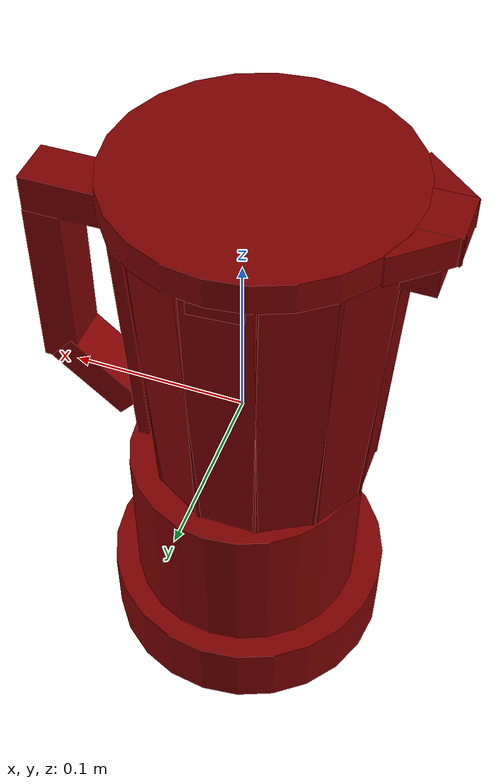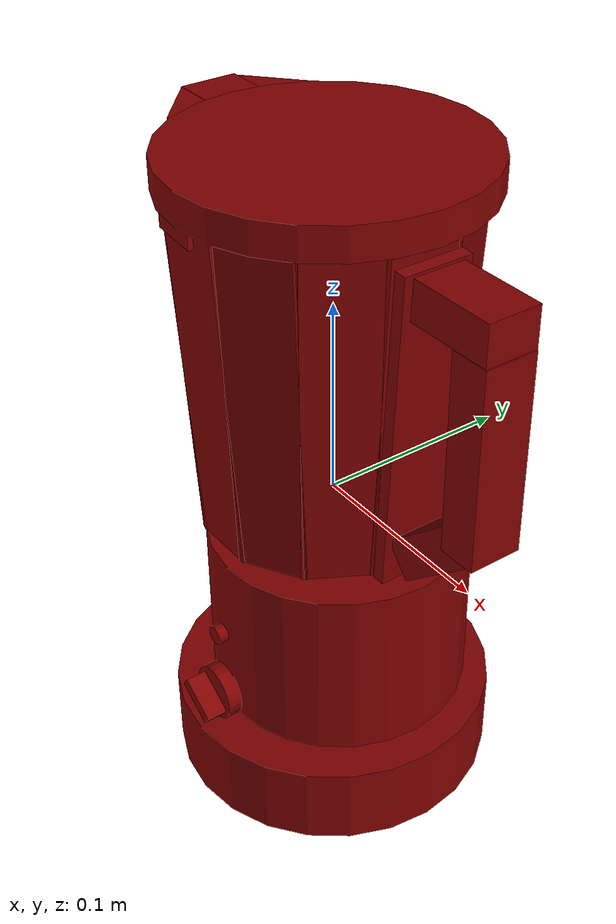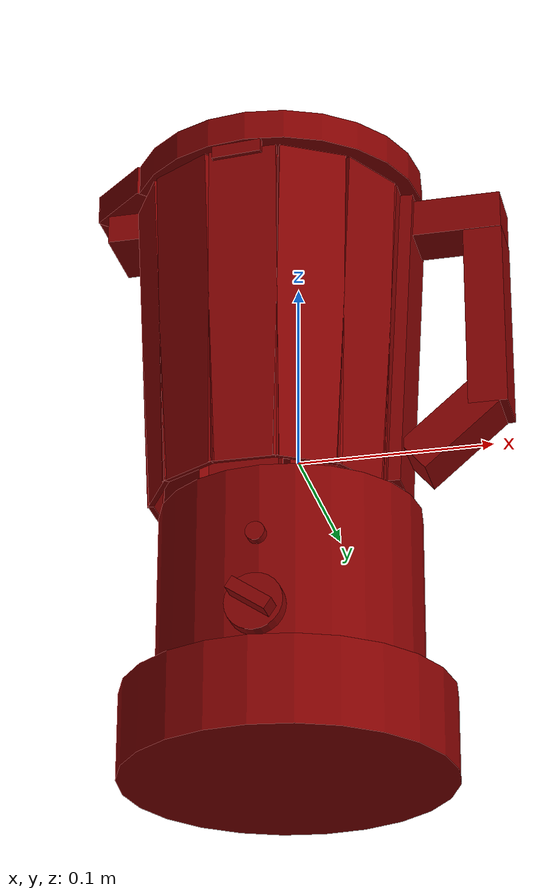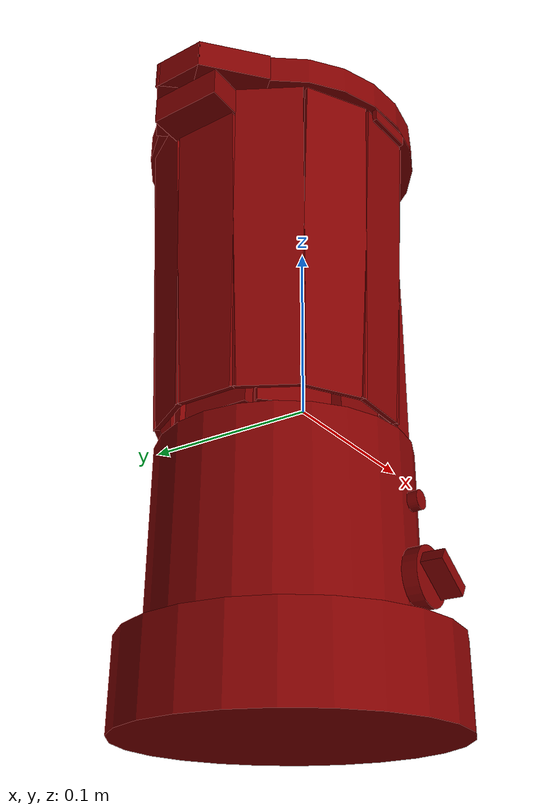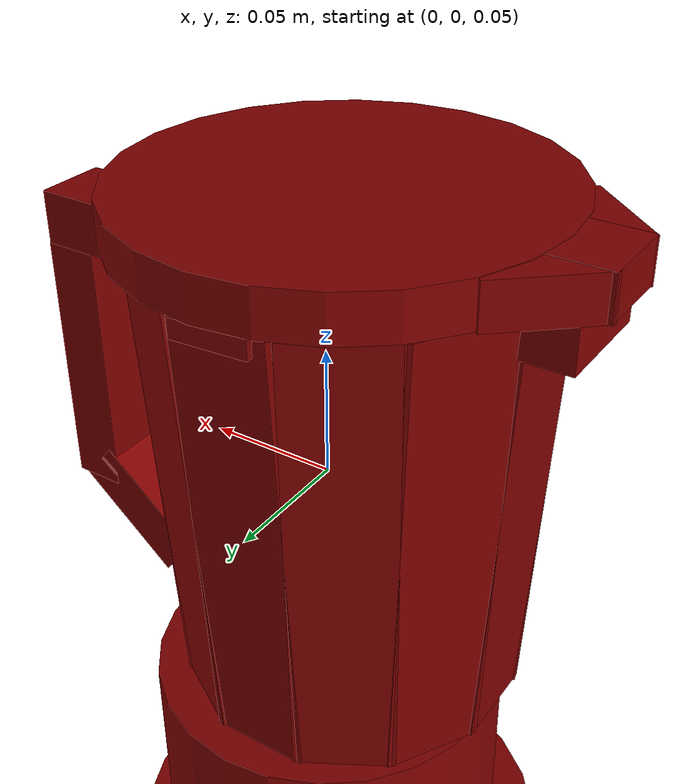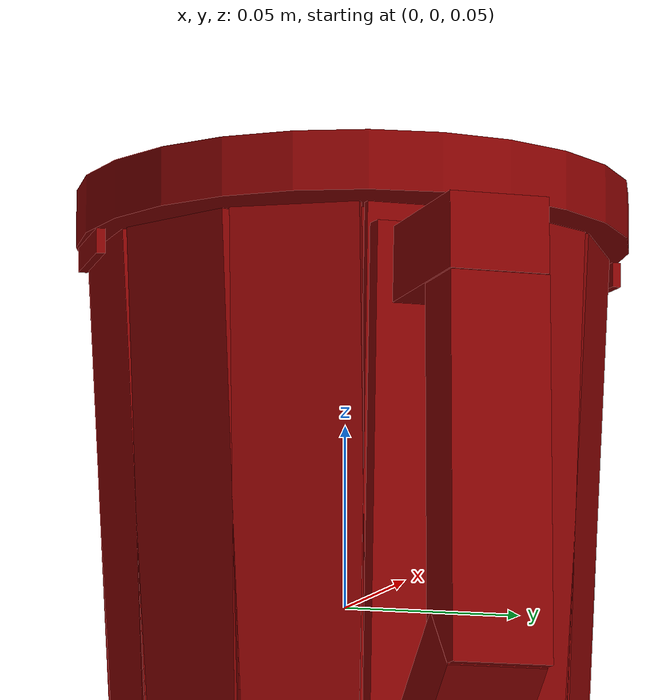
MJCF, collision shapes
<?xml version='1.0' encoding='UTF-8'?>
<mujoco model="model">
  <option timestep="0.002" gravity="0.0 0.0 -9.81"/>
  <compiler angle="radian"/>
  <asset>
    <mesh file="visuals/Blade001.obj" name="Blade001_vis"/>
    <mesh file="visuals/Body001.obj" name="Body001_vis"/>
    <mesh file="visuals/Button001.obj" name="Button001_vis"/>
    <mesh file="visuals/Handle001.obj" name="Handle001_vis"/>
    <mesh file="visuals/Jug001_Clear.obj" name="Jug001_Clear_vis"/>
    <mesh file="visuals/Knob001.obj" name="Knob001_vis"/>
    <mesh file="visuals/Lid001.obj" name="Lid001_vis"/>
    <texture file="visuals/T_BC001.png" name="Body001_material" type="2d"/>
    <material name="Body001_material" rgba="1 1 1 1.0" texture="Body001_material" shininess="0.4472135901451111" specular="0.3103448502657381"/>
    <texture file="visuals/T_BC001.png" name="Button001_material" type="2d"/>
    <material name="Button001_material" rgba="1 1 1 1.0" texture="Button001_material" shininess="0.4472135901451111" specular="0.3103448502657381"/>
    <texture file="visuals/T_BC001.png" name="Handle001_material" type="2d"/>
    <material name="Handle001_material" rgba="1 1 1 1.0" texture="Handle001_material" shininess="0.4472135901451111" specular="0.3103448502657381"/>
    <texture file="visuals/T_BC001.png" name="Blade001_material" type="2d"/>
    <material name="Blade001_material" rgba="1 1 1 1.0" texture="Blade001_material" shininess="0.4472135901451111" specular="0.3103448502657381"/>
    <texture file="visuals/T_BC001.png" name="Jug001_Clear_material" type="2d"/>
    <material name="Jug001_Clear_material" rgba="1 1 1 0.800000011920929" texture="Jug001_Clear_material" shininess="0.4472135901451111" specular="0.3103448502657381"/>
    <texture file="visuals/T_BC001.png" name="Lid001_material" type="2d"/>
    <material name="Lid001_material" rgba="1 1 1 1.0" texture="Lid001_material" shininess="0.4472135901451111" specular="0.3103448502657381"/>
    <texture file="visuals/T_BC001.png" name="Knob001_material" type="2d"/>
    <material name="Knob001_material" rgba="1 1 1 1.0" texture="Knob001_material" shininess="0.4472135901451111" specular="0.3103448502657381"/>
  </asset>
  <default>
    <default class="visual">
      <geom conaffinity="0" contype="0" group="1" type="mesh"/>
    </default>
    <default class="collision">
      <geom group="0" rgba="0.5 0 0 0.5"/>
    </default>
    <default class="spawn">
      <geom group="0" rgba="1 1 1 0.5" contype="0" conaffinity="0"/>
      <site group="0" rgba="1 1 1 0.5"/>
    </default>
    <default class="region">
      <geom group="1" conaffinity="0" contype="0" rgba="0 1 0 0"/>
    </default>
  </default>
  <worldbody>
    <body>
      <body name="object">
        <geom mesh="Body001_vis" type="mesh" solimp="0.998 0.998 0.001" solref="0.001 1" friction="0.95 0.3 0.1" class="visual" material="Body001_material"/>
        <geom class="collision" type="cylinder" pos="-0.005895 0.003938 -0.146067" size="0.08354654908180237 0.02203417755663395" quat="1.0 0.0 0.0 0.0" density="100"/>
        <geom class="collision" type="cylinder" pos="-0.005895 0.008325 -0.075028" size="0.06711135804653168 0.04750218614935875" quat="1.0 0.0 0.0 0.0" density="100"/>
        <geom class="collision" type="box" pos="-0.064896 0.006099 -0.007277" size="0.0030985779594630003 0.017711566761136055 0.017908580601215363" quat="1.0 0.0 0.0 0.0" density="100"/>
        <geom class="collision" type="box" pos="0.029324 0.006099 -0.007277" size="0.0030985779594630003 0.017711566761136055 0.017908567562699318" quat="1.0 0.0 0.0 0.0" density="100"/>
        <geom class="collision" type="box" pos="-0.017786 -0.041011 -0.007277" size="0.017711568623781204 0.0030985793564468622 0.017908554524183273" quat="1.0 0.0 0.0 0.0" density="100"/>
        <geom class="collision" type="box" pos="-0.017786 0.053210 -0.007277" size="0.017711568623781204 0.0030985793564468622 0.01790854148566723" quat="1.0 0.0 0.0 0.0" density="100"/>
        <geom class="collision" type="box" pos="0.015526 0.039411 -0.007277" size="0.0030985777266323566 0.017711566761136055 0.01790849305689335" quat="0.38268354535102844 0.0 -0.0 -0.9238795042037964" density="100"/>
        <geom class="collision" type="box" pos="-0.051098 -0.027212 -0.007277" size="0.0030985777266323566 0.017711566761136055 0.01790849305689335" quat="0.38268354535102844 0.0 -0.0 -0.9238795042037964" density="100"/>
        <geom class="collision" type="box" pos="0.015526 -0.027212 -0.007277" size="0.0030985779594630003 0.017711566761136055 0.01790849305689335" quat="0.9238795042037964 0.0 -0.0 -0.3826834559440613" density="100"/>
        <geom class="collision" type="box" pos="-0.051098 0.039411 -0.007277" size="0.0030985779594630003 0.017711566761136055 0.01790849305689335" quat="0.9238795042037964 0.0 -0.0 -0.3826834559440613" density="100"/>
        <body name="Button001">
          <joint axis="0.0 1.0 0.0" pos="-0.005903 -0.065722 -0.066494" limited="true" name="Button001_joint" range="0.0 0.003" type="slide" damping="1" frictionloss="1" armature=".01" stiffness="0.05"/>
          <geom mesh="Button001_vis" type="mesh" solimp="0.998 0.998 0.001" solref="0.001 1" friction="0.95 0.3 0.1" class="visual" material="Button001_material"/>
          <geom class="collision" type="cylinder" pos="-0.005895 -0.065677 -0.066531" size="0.00479704886674881 0.0025645531713962555" quat="0.7071068286895752 0.7071067690849304 0.0 0.0" density="100"/>
        </body>
        <body name="Handle001">
          <joint axis="0.0 0.0 1.0" pos="0.073328 0.006403 0.065737" limited="true" name="Handle001_joint" range="0.0 0.2" type="slide" damping="1" frictionloss="1" armature=".01" stiffness="0.05"/>
          <geom mesh="Handle001_vis" type="mesh" solimp="0.998 0.998 0.001" solref="0.001 1" friction="0.95 0.3 0.1" class="visual" material="Handle001_material"/>
          <geom class="collision" type="box" pos="0.084186 0.006303 0.132024" size="0.024435071274638176 0.013484399765729904 0.010110474191606045" quat="1.0 0.0 0.0 0.0" density="100"/>
          <geom class="collision" type="box" pos="0.098803 0.006303 0.071209" size="0.010110338218510151 0.013484399765729904 0.05041544884443283" quat="1.0 0.0 0.0 0.0" density="100"/>
          <geom class="collision" type="box" pos="0.078942 0.006303 0.011634" size="0.02543528564274311 0.013484399765729904 0.010110336355865002" quat="0.9384012818336487 0.0 -0.3455474078655243 0.0" density="100"/>
          <geom class="collision" type="box" pos="0.055656 0.006099 0.061901" size="0.003270904766395688 0.017711566761136055 0.08210444450378418" quat="0.9996132850646973 0.0 0.027808556333184242 0.0" density="100"/>
          <body name="Blade001">
            <joint axis="0.0 0.0 1.0" pos="-0.017639 0.006403 0.062518" limited="false" name="Blade001_joint" range="0 360" type="hinge" damping="1" frictionloss="1" armature=".01" stiffness="0.05" springref="-0.00"/>
            <geom mesh="Blade001_vis" type="mesh" solimp="0.998 0.998 0.001" solref="0.001 1" friction="0.95 0.3 0.1" class="visual" material="Blade001_material"/>
            <geom class="collision" type="cylinder" pos="-0.017597 0.006518 -0.008053" size="0.0280256737023592 0.018888885155320168" quat="1.0 0.0 0.0 0.0" density="100"/>
            <geom class="collision" type="cylinder" pos="-0.017597 0.006518 0.038419" size="0.02053365297615528 0.027440669015049934" quat="1.0 0.0 0.0 0.0" density="100"/>
            <geom class="collision" type="cylinder" pos="-0.017597 0.006518 0.109715" size="0.010141669772565365 0.042216382920742035" quat="1.0 0.0 0.0 0.0" density="100"/>
            <geom class="collision" type="box" pos="-0.042184 -0.010183 0.022065" size="0.006671010982245207 0.025818057358264923 0.0009999943431466818" quat="1.0 0.0 0.0 0.0" density="100"/>
            <geom class="collision" type="box" pos="0.006683 0.023000 0.032216" size="0.006671010982245207 0.025818057358264923 0.000999994808807969" quat="1.0 0.0 0.0 0.0" density="100"/>
            <geom class="collision" type="box" pos="-0.001538 -0.018419 0.061324" size="0.025818057358264923 0.006671012844890356 0.0009999953908845782" quat="1.0 0.0 0.0 0.0" density="100"/>
            <geom class="collision" type="box" pos="-0.034721 0.030448 0.051173" size="0.025818057358264923 0.006671012844890356 0.0009999959729611874" quat="1.0 0.0 0.0 0.0" density="100"/>
          </body>
          <body name="Jug001_Clear">
            <geom class="region" name="reg_int" type="box" pos="-0.017983 0.006708000000000002 0.0851375" size="0.054757 0.054829 0.06708549999999999"/>
            <geom mesh="Jug001_Clear_vis" type="mesh" solimp="0.998 0.998 0.001" solref="0.001 1" friction="0.95 0.3 0.1" class="visual" material="Jug001_Clear_material"/>
            <geom class="collision" type="box" pos="0.048994 0.006099 0.064795" size="0.0014110434567555785 0.017711566761136055 0.08591540902853012" quat="0.9996132850646973 0.0 0.027808556333184242 0.0" density="100"/>
            <geom class="collision" type="box" pos="-0.079438 0.006099 0.064795" size="0.0014110434567555785 0.017711566761136055 0.08591540902853012" quat="0.9996132850646973 0.0 -0.027808567509055138 0.0" density="100"/>
            <geom class="collision" type="box" pos="-0.015222 0.070316 0.064795" size="0.0014110434567555785 0.017711566761136055 0.08591540902853012" quat="0.7068333625793457 -0.019663644954562187 -0.019663646817207336 -0.7068333029747009" density="100"/>
            <geom class="collision" type="box" pos="-0.015222 -0.058117 0.064795" size="0.0014110434567555785 0.017711566761136055 0.08591540902853012" quat="0.7068333625793457 0.01966363750398159 0.01966363750398159 -0.7068333029747009" density="100"/>
            <geom class="collision" type="box" pos="-0.047330 -0.049513 0.064795" size="0.0014110434567555785 0.017711566761136055 0.08591540902853012" quat="0.49980661273002625 0.024082934483885765 0.013904287479817867 -0.8656904697418213" density="100"/>
            <geom class="collision" type="box" pos="0.016886 0.061712 0.064795" size="0.0014110434567555785 0.017711566761136055 0.08591540902853012" quat="0.49980661273002625 -0.02408294379711151 -0.013904293067753315 -0.8656904697418213" density="100"/>
            <geom class="collision" type="box" pos="0.040391 0.038208 0.064795" size="0.0014110434567555785 0.017711566761136055 0.08591540902853012" quat="0.25871896743774414 -0.026861032471060753 -0.007197392173111439 -0.9655522704124451" density="100"/>
            <geom class="collision" type="box" pos="-0.070835 -0.026009 0.064795" size="0.0014110434567555785 0.017711566761136055 0.08591540902853012" quat="0.25871896743774414 0.026861021295189857 0.007197389379143715 -0.9655522704124451" density="100"/>
            <geom class="collision" type="box" pos="-0.070835 0.038208 0.064795" size="0.0014110434567555785 0.017711566761136055 0.08591540157794952" quat="0.25871920585632324 -0.02686098776757717 0.007197387516498566 0.9655522108078003" density="100"/>
            <geom class="collision" type="box" pos="0.040391 -0.026009 0.064795" size="0.0014110434567555785 0.017711566761136055 0.08591540902853012" quat="0.25871920585632324 0.026861025020480156 -0.007197396829724312 0.9655522108078003" density="100"/>
            <geom class="collision" type="box" pos="0.016886 -0.049513 0.064795" size="0.0014110434567555785 0.017711566761136055 0.08591540902853012" quat="0.4998069107532501 0.024082954972982407 -0.013904305174946785 0.865690290927887" density="100"/>
            <geom class="collision" type="box" pos="-0.047330 0.061712 0.064795" size="0.0014110434567555785 0.017711566761136055 0.08591540902853012" quat="0.4998069107532501 -0.02408294379711151 0.013904298655688763 0.865690290927887" density="100"/>
            <geom class="collision" type="box" pos="-0.089107 0.006931 0.143926" size="0.012614632025361061 0.019579734653234482 0.007855560630559921" quat="1.0 0.0 0.0 0.0" density="100"/>
          </body>
          <body name="Lid001">
            <joint axis="0.0 0.0 1.0" pos="-0.022429 0.006403 0.145187" limited="true" name="Lid001_joint" range="0.0 0.1" type="slide" damping="1" frictionloss="1" armature=".01" stiffness="0.05"/>
            <geom mesh="Lid001_vis" type="mesh" solimp="0.998 0.998 0.001" solref="0.001 1" friction="0.95 0.3 0.1" class="visual" material="Lid001_material"/>
            <geom class="collision" type="cylinder" pos="-0.012361 0.006411 0.160223" size="0.07686559855937958 0.00810125283896923" quat="1.0 0.0 0.0 0.0" density="100"/>
            <geom class="collision" type="box" pos="-0.096101 0.006931 0.160190" size="0.012614632025361061 0.014571985229849815 0.008048349991440773" quat="1.0 0.0 0.0 0.0" density="100"/>
            <geom class="collision" type="box" pos="-0.017786 -0.051615 0.136672" size="0.012062350288033485 0.003668747842311859 0.015116958878934383" quat="1.0 0.0 0.0 0.0" density="100"/>
            <geom class="collision" type="box" pos="-0.017786 0.064500 0.136672" size="0.012062354944646358 0.003668749239295721 0.015116964466869831" quat="1.0 0.0 0.0 0.0" density="100"/>
            <geom class="collision" type="box" pos="0.040272 0.006442 0.136672" size="0.003668752033263445 0.012062356807291508 0.015116969123482704" quat="1.0 0.0 0.0 0.0" density="100"/>
            <geom class="collision" type="box" pos="-0.075843 0.006442 0.136672" size="0.0036687529645860195 0.01206236146390438 0.015116973780095577" quat="1.0 0.0 0.0 0.0" density="100"/>
            <geom class="collision" type="box" pos="-0.071044 -0.016671 0.136672" size="0.012062367051839828 0.0036687529645860195 0.01511697843670845" quat="0.8360974192619324 0.0 -0.0 -0.5485810041427612" density="100"/>
            <geom class="collision" type="box" pos="0.035472 0.029556 0.136672" size="0.012062367051839828 0.0036687529645860195 0.01511697843670845" quat="0.8360974192619324 0.0 -0.0 -0.5485810041427612" density="100"/>
            <geom class="collision" type="box" pos="-0.040899 0.059700 0.136672" size="0.012062367051839828 0.0036687529645860195 0.01511697843670845" quat="0.9791154861450195 0.0 0.0 0.20330475270748138" density="100"/>
            <geom class="collision" type="box" pos="0.005328 -0.046816 0.136672" size="0.012062367051839828 0.0036687529645860195 0.01511697843670845" quat="0.9791154861450195 0.0 0.0 0.20330475270748138" density="100"/>
            <geom class="collision" type="box" pos="0.024395 -0.033450 0.136672" size="0.012062367051839828 0.0036687529645860195 0.01511697843670845" quat="0.9184560775756836 0.0 0.0 0.39552295207977295" density="100"/>
            <geom class="collision" type="box" pos="-0.059967 0.046335 0.136672" size="0.012062367051839828 0.0036687529645860195 0.01511697843670845" quat="0.9184560775756836 0.0 0.0 0.39552295207977295" density="100"/>
            <geom class="collision" type="box" pos="0.022107 0.048623 0.136672" size="0.012062367051839828 0.0036687529645860195 0.01511697843670845" quat="0.9291235208511353 0.0 -0.0 -0.36976948380470276" density="100"/>
            <geom class="collision" type="box" pos="-0.057678 -0.035739 0.136672" size="0.012062367051839828 0.0036687529645860195 0.01511697843670845" quat="0.9291235208511353 0.0 -0.0 -0.36976948380470276" density="100"/>
            <geom class="collision" type="box" pos="-0.037643 -0.048114 0.136672" size="0.012062367051839828 0.0036687529645860195 0.01511697843670845" quat="0.9848077297210693 0.0 -0.0 -0.17364826798439026" density="100"/>
            <geom class="collision" type="box" pos="0.002071 0.060998 0.136672" size="0.012062367051839828 0.0036687529645860195 0.01511697843670845" quat="0.9848077297210693 0.0 -0.0 -0.17364826798439026" density="100"/>
            <geom class="collision" type="box" pos="-0.072342 0.026299 0.136672" size="0.01206236518919468 0.0036687529645860195 0.01511697843670845" quat="0.8191519975662231 0.0 0.0 0.5735765099525452" density="100"/>
            <geom class="collision" type="box" pos="0.036770 -0.013414 0.136672" size="0.01206236518919468 0.0036687529645860195 0.01511697843670845" quat="0.8191519975662231 0.0 0.0 0.5735765099525452" density="100"/>
            <geom class="collision" type="box" pos="-0.017238 -0.067420 0.148328" size="0.013126359321177006 0.0012383818393573165 0.003460837062448263" quat="0.9991809725761414 0.0 -0.0 -0.04046505689620972" density="100"/>
            <geom class="collision" type="box" pos="-0.086444 0.022921 0.159997" size="0.01261463388800621 0.019166914746165276 0.008048282004892826" quat="0.9105595946311951 0.0 -0.0 -0.4133777916431427" density="100"/>
            <geom class="collision" type="box" pos="-0.086375 -0.010376 0.159997" size="0.01261463388800621 0.019166914746165276 0.008048282004892826" quat="0.9105597138404846 0.0 0.0 0.4133776128292084" density="100"/>
            <geom class="collision" type="box" pos="-0.016854 0.080283 0.148328" size="0.013183570466935635 0.0012383820721879601 0.003460837062448263" quat="0.9993478655815125 0.0 0.0 0.0361081063747406" density="100"/>
          </body>
        </body>
        <body name="Knob001">
          <joint axis="0.0 1.0 0.0" pos="-0.005554 -0.067566 -0.103910" limited="true" name="Knob001_joint" range="0.0 4.886921905584122" type="hinge" damping="0.05" armature="0.001" springref="-0.1"/>
          <geom mesh="Knob001_vis" type="mesh" solimp="0.998 0.998 0.001" solref="0.001 1" friction="0.95 0.3 0.1" class="visual" material="Knob001_material"/>
          <geom class="collision" type="cylinder" pos="-0.005688 -0.067137 -0.103681" size="0.01438992377370596 0.0037583396770060062" quat="0.7071068286895752 0.7071067690849304 0.0 0.0" density="100"/>
          <geom class="collision" type="box" pos="-0.005568 -0.076410 -0.103753" size="0.0031969600822776556 0.0053777205757796764 0.011407947167754173" quat="0.882947564125061 0.0 -0.46947166323661804 0.0" density="100"/>
        </body>
        <geom class="region" name="reg_main" type="box" pos="-0.016664000000000005 0.006402999999999999 0.0" size="0.092175 0.075344 0.168187"/>
      </body>
    </body>
  </worldbody>
  <actuator>
    <motor name="Button001_joint_actuator" joint="Button001_joint" gear="0.1"/>
    <motor name="Handle001_joint_actuator" joint="Handle001_joint" gear="50"/>
    <motor name="Knob001_joint_actuator" joint="Knob001_joint" gear="10"/>
    <motor name="Blade001_joint_actuator" joint="Blade001_joint" gear="10"/>
    <motor name="Lid001_joint_actuator" joint="Lid001_joint" gear="20"/>
  </actuator>
</mujoco>
